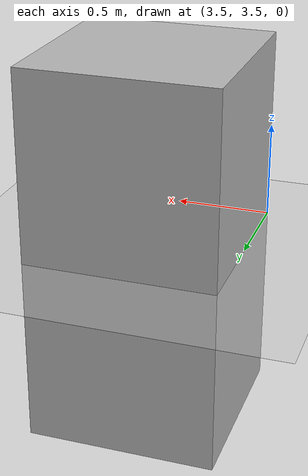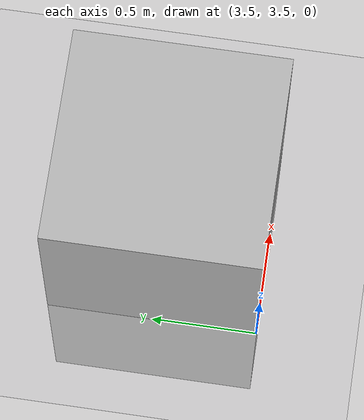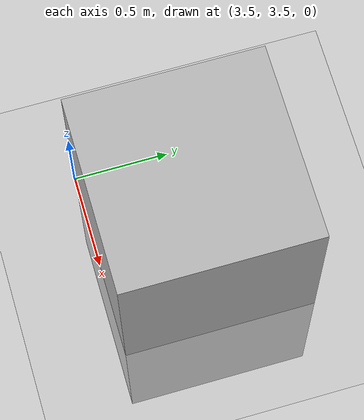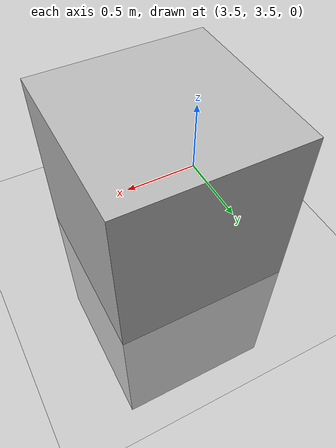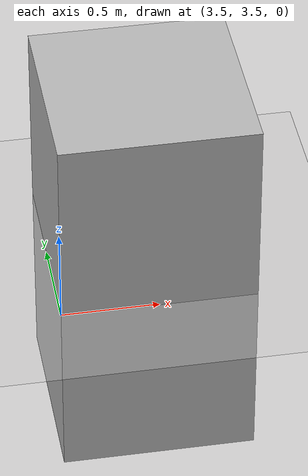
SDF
<?xml version="1.0" ?>
<sdf version="1.5">
  <world name="default">
    <!-- A global light source -->
    <include>
      <uri>model://sun</uri>
    </include>
    <!-- A ground plane -->
    <include>
      <uri>model://ground_plane</uri>
    </include>

    <model name="pond">
      <link name="pond">
        <collision name="collision">
          <pose>4 4 0 0 0 0</pose>
          <geometry>
            <box>
              <size>1 1 2</size>
            </box>
          </geometry>
        </collision>
        <visual name="visual">
          <pose>4 4 0 0 0 0</pose>
          <geometry>
            <box>
              <size>1 1 2</size>
            </box>
          </geometry>
        </visual>
        <inertial>
          <pose>4 4 0 0 0 0</pose>
        </inertial>
      </link>
    </model>
  </world>
</sdf>
